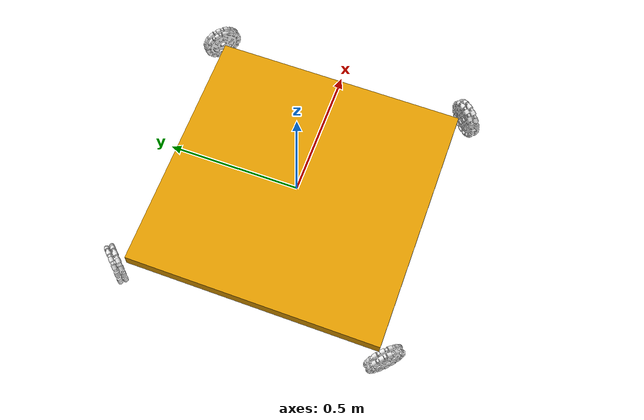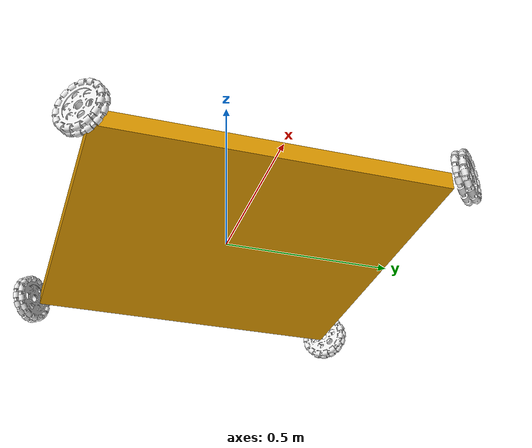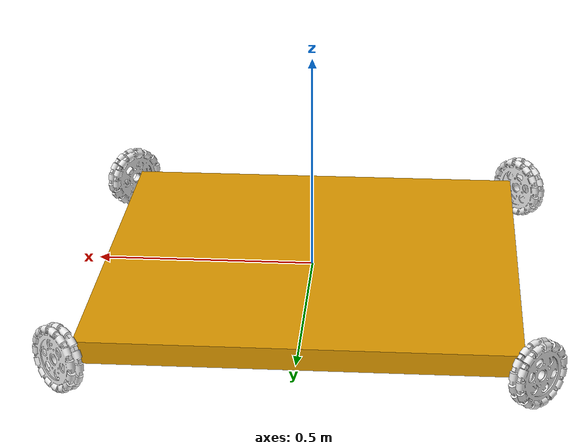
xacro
<?xml version="1.0" ?>

<robot name="test_base" xmlns:xacro="https://www.ros.org/wiki/xacro">

    <!-- create the main body here -->
    <link name="main">
        <inertial>
            <mass value="1"/>
            <inertia ixx="0.1" ixy="0.0" ixz="0.0" iyy="0.1" iyz="0.0" izz="0.01"/>
        </inertial>
        <visual>
            <geometry>
                <box size="0.95 0.95 0.05"/>
            </geometry>
        </visual>
    </link>

    <xacro:include filename="$(find omni_wheel_description)/xacro/omni_150mm.xacro"/>

    <xacro:omni_wheel_150mm name="wheel1" parent_link="main"
                            xyz=" 0.5  0.5 0" driving_angle="-0.785"
                            effort_limit="10" speed_limit="40" reduction="1"/>

    <xacro:omni_wheel_150mm name="wheel2" parent_link="main"
                            xyz="-0.5  0.5 0" driving_angle=" 0.785"
                            effort_limit="10" speed_limit="40" reduction="1"/>

    <xacro:omni_wheel_150mm name="wheel3" parent_link="main"
                            xyz="-0.5 -0.5 0" driving_angle=" 2.356"
                            effort_limit="10" speed_limit="40" reduction="1"/>

    <xacro:omni_wheel_150mm name="wheel4" parent_link="main"
                            xyz=" 0.5 -0.5 0" driving_angle=" 3.926"
                            effort_limit="10" speed_limit="40" reduction="1"/>

    <gazebo>
      <plugin name="gazebo_ros_control" filename="libgazebo_ros_control.so">
        <robotNamespace>/test_base</robotNamespace>
      </plugin>
    </gazebo>

</robot>

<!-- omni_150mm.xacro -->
<robot xmlns:xacro="http://www.ros.org/wiki/xacro">

<xacro:include filename="$(find omni_wheel_description)/xacro/hardware_interface.xacro"/>

<!-- mass of wheel: 0.8kg -->
<!-- diameter: 0.152m -->
<!-- width: 0.039m -->

<xacro:macro name="omni_wheel_150mm" params="name parent_link xyz driving_angle effort_limit speed_limit reduction">

    <!-- mass: kg
         radius: m
         width: m -->

    <!-- friction - The physical static friction. For prismatic joints, the units are Newtons.
            For revolving joints, the units are Newton meters.  -->

    <!-- damping - The physical damping value. For prismatic joints, the units are Newton seconds per meter.
            For revolving joints, Newton meter seconds per radian.  -->

    <xacro:property name="mass" value="0.8"/>
    <xacro:property name="radius" value="0.076"/>
    <xacro:property name="width" value="0.039"/>
    <xacro:property name="damping" value="1"/>
    <xacro:property name="friction" value="1"/>
    <xacro:property name="collision_mesh_scaler" value="0.05"/>

    <!-- create the wheel link first -->
    <link name="${name}">

        <inertial>
            <mass value="${mass}"/>
            <inertia  ixx="0.00156741267852" ixy="0" ixz="0" iyy="0.00156534309855" iyz="0" izz="0.00294038677227" />
        </inertial>
        <visual>
            <geometry>
                <mesh filename="package://omni_wheel_description/meshes/omni_150mm.STL" scale="0.001 0.001 0.001"/>
            </geometry>
        </visual>
        <collision>
            <geometry>
                <cylinder radius="${radius}" length="${width*collision_mesh_scaler}"/>
            </geometry>
        </collision>

    </link>

    <gazebo reference="${name}">
        <material>Gazebo/White</material>

        <!-- friction coeff along the friction axis -->
        <mu1>0.0001</mu1>

        <!-- friciton coeff along the axes perpendicular to the friction axis -->
        <mu2>1.0</mu2>

        <!-- direction for friction axis -->
        <fdir1>0 0 1</fdir1>
    </gazebo>

    <joint name="${name}_joint" type="continuous">

        <parent link="${parent_link}"/>
        <child link="${name}"/>
        <origin xyz="${xyz}" rpy="-1.57 0 ${driving_angle}"/>
        <axis xyz="0 0 1" rpy="0 0 0"/>
        <limit effort="${effort_limit}" velocity="${speed_limit}"/>
        <joint_properties damping="${damping}" friction="${friction}" />

    </joint>

    <xacro:joint_transmission joint_name="${name}_joint" reduction="${reduction}"/>

</xacro:macro>

</robot>
